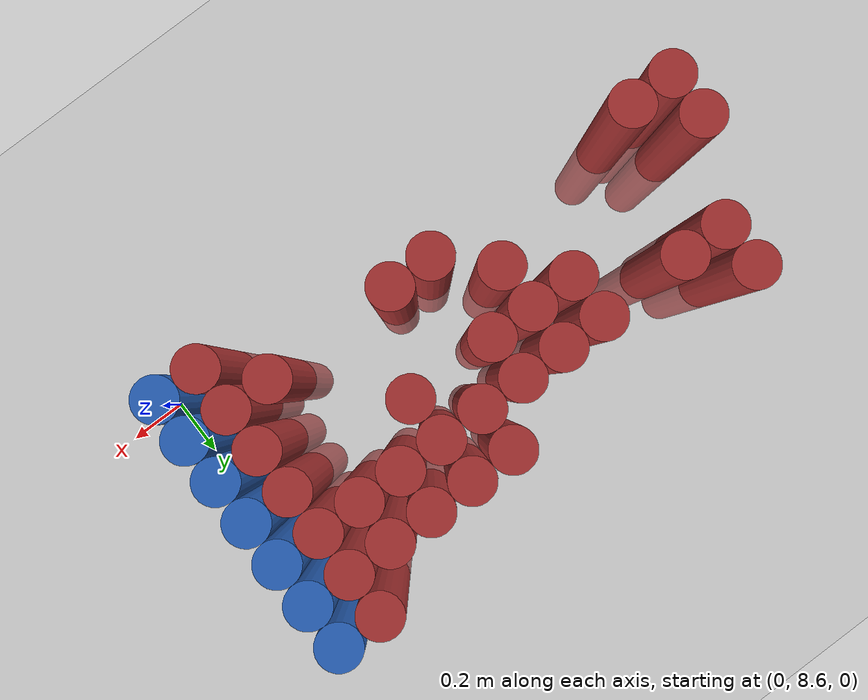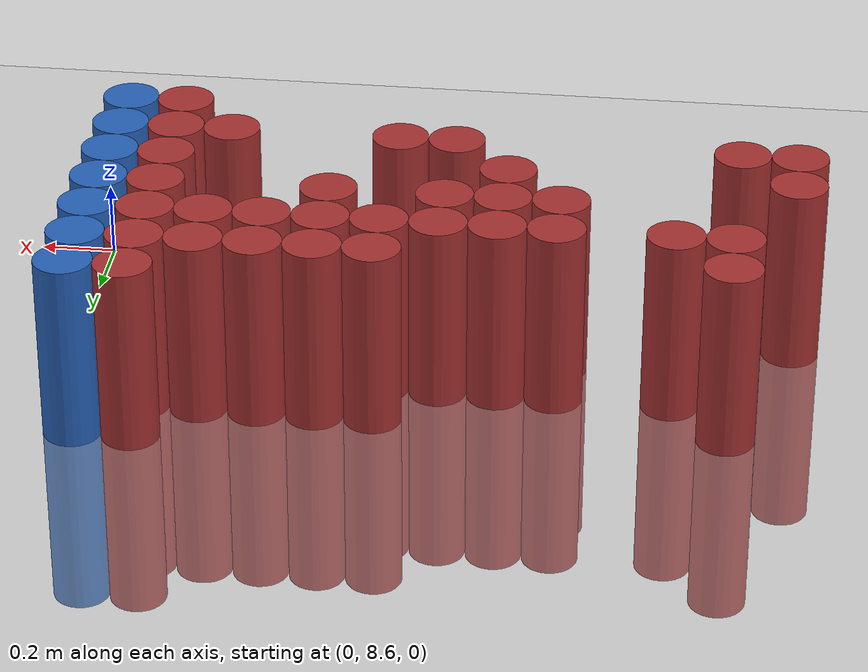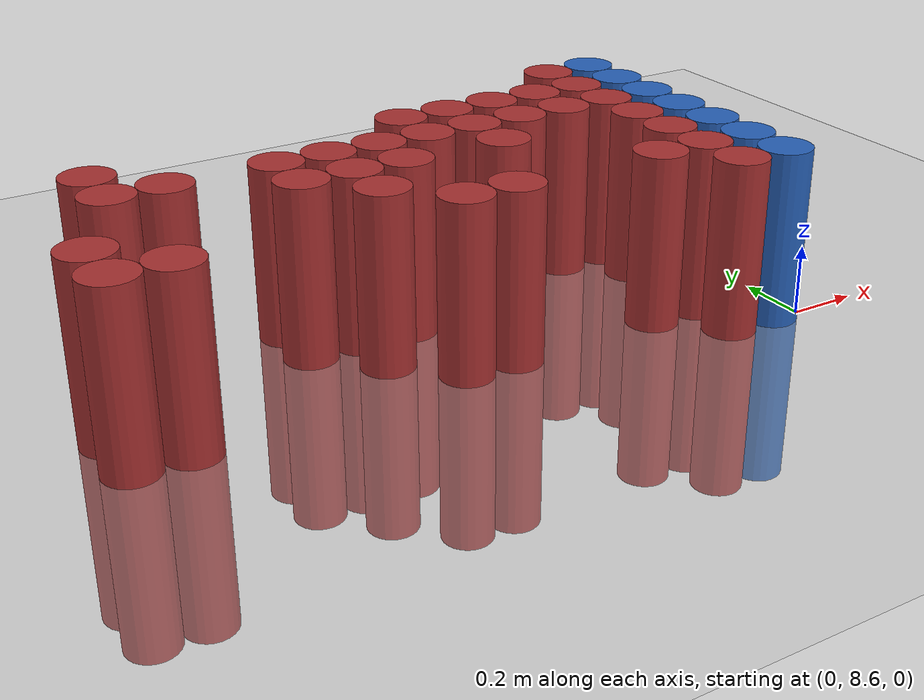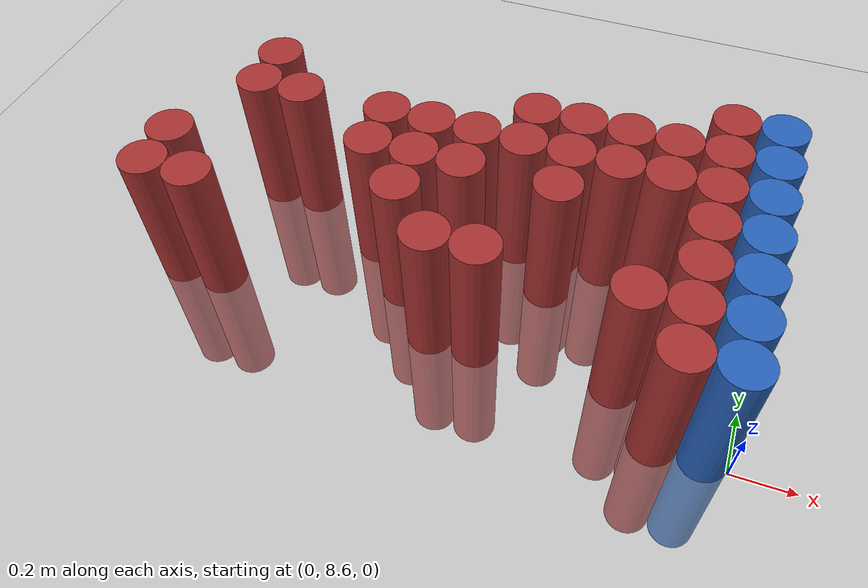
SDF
<sdf version="1.6">
 <world name="default">
  <model name="ground_plane">
   <static>1</static>
   <link name="link">
    <collision name="collision">
     <geometry><plane><normal>0 0 1</normal><size>100 100</size></plane></geometry>
     <surface><friction><ode><mu>100</mu><mu2>50</mu2></ode></friction></surface>
    </collision>
    <visual name="visual">
     <cast_shadows>0</cast_shadows>
     <geometry><plane><normal>0 0 1</normal><size>100 100</size></plane></geometry>
     <material>
      <script><uri>file://media/materials/scripts/gazebo.material</uri><name>Gazebo/Grey</name></script>
     </material>
    </visual>
   </link>
  </model>
  <model name="unit_cylinder_201">
   <static>1</static>
   <pose>-1.875000 8.775000 0.000000 0.000000 0.000000 0.000000</pose>
   <link name="link">
    <inertial>
     <mass>1</mass>
     <inertia><ixx>0.145833</ixx><ixy>0</ixy><ixz>0</ixz><iyy>0.145833</iyy><iyz>0</iyz><izz>0.125</izz></inertia>
    </inertial>
    <collision name="collision">
     <geometry><cylinder><radius>0.075000</radius><length>1</length></cylinder></geometry>
    </collision>
    <visual name="visual">
     <geometry><cylinder><radius>0.075000</radius><length>1</length></cylinder></geometry>
     <material>
      <ambient>0.648000 0.192000 0.192000 1</ambient>
      <diffuse>0.648000 0.192000 0.192000 1</diffuse>
     </material>
     <material>
      <script><name>Gazebo/Grey</name><uri>file://media/materials/scripts/gazebo.material</uri></script>
     </material>
    </visual>
    <sensor name="sensor_contact" type="contact"><contact><collision>collision</collision></contact></sensor>
   </link>
   <plugin filename="gz-sim-touchplugin-system" name="gz::sim::systems::TouchPlugin">
    <target>robot</target>
    <namespace>robot</namespace>
    <time>0.001</time>
    <enabled>true</enabled>
   </plugin>
  </model>
  <model name="unit_cylinder_202">
   <static>1</static>
   <pose>-1.875000 8.925000 0.000000 0.000000 0.000000 0.000000</pose>
   <link name="link">
    <inertial>
     <mass>1</mass>
     <inertia><ixx>0.145833</ixx><ixy>0</ixy><ixz>0</ixz><iyy>0.145833</iyy><iyz>0</iyz><izz>0.125</izz></inertia>
    </inertial>
    <collision name="collision">
     <geometry><cylinder><radius>0.075000</radius><length>1</length></cylinder></geometry>
    </collision>
    <visual name="visual">
     <geometry><cylinder><radius>0.075000</radius><length>1</length></cylinder></geometry>
     <material>
      <ambient>0.648000 0.192000 0.192000 1</ambient>
      <diffuse>0.648000 0.192000 0.192000 1</diffuse>
     </material>
     <material>
      <script><name>Gazebo/Grey</name><uri>file://media/materials/scripts/gazebo.material</uri></script>
     </material>
    </visual>
    <sensor name="sensor_contact" type="contact"><contact><collision>collision</collision></contact></sensor>
   </link>
   <plugin filename="gz-sim-touchplugin-system" name="gz::sim::systems::TouchPlugin">
    <target>robot</target>
    <namespace>robot</namespace>
    <time>0.001</time>
    <enabled>true</enabled>
   </plugin>
  </model>
  <model name="unit_cylinder_206">
   <static>1</static>
   <pose>-1.725000 8.775000 0.000000 0.000000 0.000000 0.000000</pose>
   <link name="link">
    <inertial>
     <mass>1</mass>
     <inertia><ixx>0.145833</ixx><ixy>0</ixy><ixz>0</ixz><iyy>0.145833</iyy><iyz>0</iyz><izz>0.125</izz></inertia>
    </inertial>
    <collision name="collision">
     <geometry><cylinder><radius>0.075000</radius><length>1</length></cylinder></geometry>
    </collision>
    <visual name="visual">
     <geometry><cylinder><radius>0.075000</radius><length>1</length></cylinder></geometry>
     <material>
      <ambient>0.648000 0.192000 0.192000 1</ambient>
      <diffuse>0.648000 0.192000 0.192000 1</diffuse>
     </material>
     <material>
      <script><name>Gazebo/Grey</name><uri>file://media/materials/scripts/gazebo.material</uri></script>
     </material>
    </visual>
    <sensor name="sensor_contact" type="contact"><contact><collision>collision</collision></contact></sensor>
   </link>
   <plugin filename="gz-sim-touchplugin-system" name="gz::sim::systems::TouchPlugin">
    <target>robot</target>
    <namespace>robot</namespace>
    <time>0.001</time>
    <enabled>true</enabled>
   </plugin>
  </model>
  <model name="unit_cylinder_207">
   <static>1</static>
   <pose>-1.725000 9.225000 0.000000 0.000000 0.000000 0.000000</pose>
   <link name="link">
    <inertial>
     <mass>1</mass>
     <inertia><ixx>0.145833</ixx><ixy>0</ixy><ixz>0</ixz><iyy>0.145833</iyy><iyz>0</iyz><izz>0.125</izz></inertia>
    </inertial>
    <collision name="collision">
     <geometry><cylinder><radius>0.075000</radius><length>1</length></cylinder></geometry>
    </collision>
    <visual name="visual">
     <geometry><cylinder><radius>0.075000</radius><length>1</length></cylinder></geometry>
     <material>
      <ambient>0.648000 0.192000 0.192000 1</ambient>
      <diffuse>0.648000 0.192000 0.192000 1</diffuse>
     </material>
     <material>
      <script><name>Gazebo/Grey</name><uri>file://media/materials/scripts/gazebo.material</uri></script>
     </material>
    </visual>
    <sensor name="sensor_contact" type="contact"><contact><collision>collision</collision></contact></sensor>
   </link>
   <plugin filename="gz-sim-touchplugin-system" name="gz::sim::systems::TouchPlugin">
    <target>robot</target>
    <namespace>robot</namespace>
    <time>0.001</time>
    <enabled>true</enabled>
   </plugin>
  </model>
  <model name="unit_cylinder_208">
   <static>1</static>
   <pose>-1.725000 9.375000 0.000000 0.000000 0.000000 0.000000</pose>
   <link name="link">
    <inertial>
     <mass>1</mass>
     <inertia><ixx>0.145833</ixx><ixy>0</ixy><ixz>0</ixz><iyy>0.145833</iyy><iyz>0</iyz><izz>0.125</izz></inertia>
    </inertial>
    <collision name="collision">
     <geometry><cylinder><radius>0.075000</radius><length>1</length></cylinder></geometry>
    </collision>
    <visual name="visual">
     <geometry><cylinder><radius>0.075000</radius><length>1</length></cylinder></geometry>
     <material>
      <ambient>0.648000 0.192000 0.192000 1</ambient>
      <diffuse>0.648000 0.192000 0.192000 1</diffuse>
     </material>
     <material>
      <script><name>Gazebo/Grey</name><uri>file://media/materials/scripts/gazebo.material</uri></script>
     </material>
    </visual>
    <sensor name="sensor_contact" type="contact"><contact><collision>collision</collision></contact></sensor>
   </link>
   <plugin filename="gz-sim-touchplugin-system" name="gz::sim::systems::TouchPlugin">
    <target>robot</target>
    <namespace>robot</namespace>
    <time>0.001</time>
    <enabled>true</enabled>
   </plugin>
  </model>
  <model name="unit_cylinder_214">
   <static>1</static>
   <pose>-1.575000 9.225000 0.000000 0.000000 0.000000 0.000000</pose>
   <link name="link">
    <inertial>
     <mass>1</mass>
     <inertia><ixx>0.145833</ixx><ixy>0</ixy><ixz>0</ixz><iyy>0.145833</iyy><iyz>0</iyz><izz>0.125</izz></inertia>
    </inertial>
    <collision name="collision">
     <geometry><cylinder><radius>0.075000</radius><length>1</length></cylinder></geometry>
    </collision>
    <visual name="visual">
     <geometry><cylinder><radius>0.075000</radius><length>1</length></cylinder></geometry>
     <material>
      <ambient>0.648000 0.192000 0.192000 1</ambient>
      <diffuse>0.648000 0.192000 0.192000 1</diffuse>
     </material>
     <material>
      <script><name>Gazebo/Grey</name><uri>file://media/materials/scripts/gazebo.material</uri></script>
     </material>
    </visual>
    <sensor name="sensor_contact" type="contact"><contact><collision>collision</collision></contact></sensor>
   </link>
   <plugin filename="gz-sim-touchplugin-system" name="gz::sim::systems::TouchPlugin">
    <target>robot</target>
    <namespace>robot</namespace>
    <time>0.001</time>
    <enabled>true</enabled>
   </plugin>
  </model>
  <model name="unit_cylinder_236">
   <static>1</static>
   <pose>-1.275000 9.075000 0.000000 0.000000 0.000000 0.000000</pose>
   <link name="link">
    <inertial>
     <mass>1</mass>
     <inertia><ixx>0.145833</ixx><ixy>0</ixy><ixz>0</ixz><iyy>0.145833</iyy><iyz>0</iyz><izz>0.125</izz></inertia>
    </inertial>
    <collision name="collision">
     <geometry><cylinder><radius>0.075000</radius><length>1</length></cylinder></geometry>
    </collision>
    <visual name="visual">
     <geometry><cylinder><radius>0.075000</radius><length>1</length></cylinder></geometry>
     <material>
      <ambient>0.648000 0.192000 0.192000 1</ambient>
      <diffuse>0.648000 0.192000 0.192000 1</diffuse>
     </material>
     <material>
      <script><name>Gazebo/Grey</name><uri>file://media/materials/scripts/gazebo.material</uri></script>
     </material>
    </visual>
    <sensor name="sensor_contact" type="contact"><contact><collision>collision</collision></contact></sensor>
   </link>
   <plugin filename="gz-sim-touchplugin-system" name="gz::sim::systems::TouchPlugin">
    <target>robot</target>
    <namespace>robot</namespace>
    <time>0.001</time>
    <enabled>true</enabled>
   </plugin>
  </model>
  <model name="unit_cylinder_237">
   <static>1</static>
   <pose>-1.275000 9.225000 0.000000 0.000000 0.000000 0.000000</pose>
   <link name="link">
    <inertial>
     <mass>1</mass>
     <inertia><ixx>0.145833</ixx><ixy>0</ixy><ixz>0</ixz><iyy>0.145833</iyy><iyz>0</iyz><izz>0.125</izz></inertia>
    </inertial>
    <collision name="collision">
     <geometry><cylinder><radius>0.075000</radius><length>1</length></cylinder></geometry>
    </collision>
    <visual name="visual">
     <geometry><cylinder><radius>0.075000</radius><length>1</length></cylinder></geometry>
     <material>
      <ambient>0.648000 0.192000 0.192000 1</ambient>
      <diffuse>0.648000 0.192000 0.192000 1</diffuse>
     </material>
     <material>
      <script><name>Gazebo/Grey</name><uri>file://media/materials/scripts/gazebo.material</uri></script>
     </material>
    </visual>
    <sensor name="sensor_contact" type="contact"><contact><collision>collision</collision></contact></sensor>
   </link>
   <plugin filename="gz-sim-touchplugin-system" name="gz::sim::systems::TouchPlugin">
    <target>robot</target>
    <namespace>robot</namespace>
    <time>0.001</time>
    <enabled>true</enabled>
   </plugin>
  </model>
  <model name="unit_cylinder_245">
   <static>1</static>
   <pose>-1.125000 8.925000 0.000000 0.000000 0.000000 0.000000</pose>
   <link name="link">
    <inertial>
     <mass>1</mass>
     <inertia><ixx>0.145833</ixx><ixy>0</ixy><ixz>0</ixz><iyy>0.145833</iyy><iyz>0</iyz><izz>0.125</izz></inertia>
    </inertial>
    <collision name="collision">
     <geometry><cylinder><radius>0.075000</radius><length>1</length></cylinder></geometry>
    </collision>
    <visual name="visual">
     <geometry><cylinder><radius>0.075000</radius><length>1</length></cylinder></geometry>
     <material>
      <ambient>0.648000 0.192000 0.192000 1</ambient>
      <diffuse>0.648000 0.192000 0.192000 1</diffuse>
     </material>
     <material>
      <script><name>Gazebo/Grey</name><uri>file://media/materials/scripts/gazebo.material</uri></script>
     </material>
    </visual>
    <sensor name="sensor_contact" type="contact"><contact><collision>collision</collision></contact></sensor>
   </link>
   <plugin filename="gz-sim-touchplugin-system" name="gz::sim::systems::TouchPlugin">
    <target>robot</target>
    <namespace>robot</namespace>
    <time>0.001</time>
    <enabled>true</enabled>
   </plugin>
  </model>
  <model name="unit_cylinder_246">
   <static>1</static>
   <pose>-1.125000 9.075000 0.000000 0.000000 0.000000 0.000000</pose>
   <link name="link">
    <inertial>
     <mass>1</mass>
     <inertia><ixx>0.145833</ixx><ixy>0</ixy><ixz>0</ixz><iyy>0.145833</iyy><iyz>0</iyz><izz>0.125</izz></inertia>
    </inertial>
    <collision name="collision">
     <geometry><cylinder><radius>0.075000</radius><length>1</length></cylinder></geometry>
    </collision>
    <visual name="visual">
     <geometry><cylinder><radius>0.075000</radius><length>1</length></cylinder></geometry>
     <material>
      <ambient>0.648000 0.192000 0.192000 1</ambient>
      <diffuse>0.648000 0.192000 0.192000 1</diffuse>
     </material>
     <material>
      <script><name>Gazebo/Grey</name><uri>file://media/materials/scripts/gazebo.material</uri></script>
     </material>
    </visual>
    <sensor name="sensor_contact" type="contact"><contact><collision>collision</collision></contact></sensor>
   </link>
   <plugin filename="gz-sim-touchplugin-system" name="gz::sim::systems::TouchPlugin">
    <target>robot</target>
    <namespace>robot</namespace>
    <time>0.001</time>
    <enabled>true</enabled>
   </plugin>
  </model>
  <model name="unit_cylinder_247">
   <static>1</static>
   <pose>-1.125000 9.225000 0.000000 0.000000 0.000000 0.000000</pose>
   <link name="link">
    <inertial>
     <mass>1</mass>
     <inertia><ixx>0.145833</ixx><ixy>0</ixy><ixz>0</ixz><iyy>0.145833</iyy><iyz>0</iyz><izz>0.125</izz></inertia>
    </inertial>
    <collision name="collision">
     <geometry><cylinder><radius>0.075000</radius><length>1</length></cylinder></geometry>
    </collision>
    <visual name="visual">
     <geometry><cylinder><radius>0.075000</radius><length>1</length></cylinder></geometry>
     <material>
      <ambient>0.648000 0.192000 0.192000 1</ambient>
      <diffuse>0.648000 0.192000 0.192000 1</diffuse>
     </material>
     <material>
      <script><name>Gazebo/Grey</name><uri>file://media/materials/scripts/gazebo.material</uri></script>
     </material>
    </visual>
    <sensor name="sensor_contact" type="contact"><contact><collision>collision</collision></contact></sensor>
   </link>
   <plugin filename="gz-sim-touchplugin-system" name="gz::sim::systems::TouchPlugin">
    <target>robot</target>
    <namespace>robot</namespace>
    <time>0.001</time>
    <enabled>true</enabled>
   </plugin>
  </model>
  <model name="unit_cylinder_254">
   <static>1</static>
   <pose>-0.975000 8.775000 0.000000 0.000000 0.000000 0.000000</pose>
   <link name="link">
    <inertial>
     <mass>1</mass>
     <inertia><ixx>0.145833</ixx><ixy>0</ixy><ixz>0</ixz><iyy>0.145833</iyy><iyz>0</iyz><izz>0.125</izz></inertia>
    </inertial>
    <collision name="collision">
     <geometry><cylinder><radius>0.075000</radius><length>1</length></cylinder></geometry>
    </collision>
    <visual name="visual">
     <geometry><cylinder><radius>0.075000</radius><length>1</length></cylinder></geometry>
     <material>
      <ambient>0.648000 0.192000 0.192000 1</ambient>
      <diffuse>0.648000 0.192000 0.192000 1</diffuse>
     </material>
     <material>
      <script><name>Gazebo/Grey</name><uri>file://media/materials/scripts/gazebo.material</uri></script>
     </material>
    </visual>
    <sensor name="sensor_contact" type="contact"><contact><collision>collision</collision></contact></sensor>
   </link>
   <plugin filename="gz-sim-touchplugin-system" name="gz::sim::systems::TouchPlugin">
    <target>robot</target>
    <namespace>robot</namespace>
    <time>0.001</time>
    <enabled>true</enabled>
   </plugin>
  </model>
  <model name="unit_cylinder_255">
   <static>1</static>
   <pose>-0.975000 9.075000 0.000000 0.000000 0.000000 0.000000</pose>
   <link name="link">
    <inertial>
     <mass>1</mass>
     <inertia><ixx>0.145833</ixx><ixy>0</ixy><ixz>0</ixz><iyy>0.145833</iyy><iyz>0</iyz><izz>0.125</izz></inertia>
    </inertial>
    <collision name="collision">
     <geometry><cylinder><radius>0.075000</radius><length>1</length></cylinder></geometry>
    </collision>
    <visual name="visual">
     <geometry><cylinder><radius>0.075000</radius><length>1</length></cylinder></geometry>
     <material>
      <ambient>0.648000 0.192000 0.192000 1</ambient>
      <diffuse>0.648000 0.192000 0.192000 1</diffuse>
     </material>
     <material>
      <script><name>Gazebo/Grey</name><uri>file://media/materials/scripts/gazebo.material</uri></script>
     </material>
    </visual>
    <sensor name="sensor_contact" type="contact"><contact><collision>collision</collision></contact></sensor>
   </link>
   <plugin filename="gz-sim-touchplugin-system" name="gz::sim::systems::TouchPlugin">
    <target>robot</target>
    <namespace>robot</namespace>
    <time>0.001</time>
    <enabled>true</enabled>
   </plugin>
  </model>
  <model name="unit_cylinder_256">
   <static>1</static>
   <pose>-0.975000 9.225000 0.000000 0.000000 0.000000 0.000000</pose>
   <link name="link">
    <inertial>
     <mass>1</mass>
     <inertia><ixx>0.145833</ixx><ixy>0</ixy><ixz>0</ixz><iyy>0.145833</iyy><iyz>0</iyz><izz>0.125</izz></inertia>
    </inertial>
    <collision name="collision">
     <geometry><cylinder><radius>0.075000</radius><length>1</length></cylinder></geometry>
    </collision>
    <visual name="visual">
     <geometry><cylinder><radius>0.075000</radius><length>1</length></cylinder></geometry>
     <material>
      <ambient>0.648000 0.192000 0.192000 1</ambient>
      <diffuse>0.648000 0.192000 0.192000 1</diffuse>
     </material>
     <material>
      <script><name>Gazebo/Grey</name><uri>file://media/materials/scripts/gazebo.material</uri></script>
     </material>
    </visual>
    <sensor name="sensor_contact" type="contact"><contact><collision>collision</collision></contact></sensor>
   </link>
   <plugin filename="gz-sim-touchplugin-system" name="gz::sim::systems::TouchPlugin">
    <target>robot</target>
    <namespace>robot</namespace>
    <time>0.001</time>
    <enabled>true</enabled>
   </plugin>
  </model>
  <model name="unit_cylinder_261">
   <static>1</static>
   <pose>-0.825000 8.775000 0.000000 0.000000 0.000000 0.000000</pose>
   <link name="link">
    <inertial>
     <mass>1</mass>
     <inertia><ixx>0.145833</ixx><ixy>0</ixy><ixz>0</ixz><iyy>0.145833</iyy><iyz>0</iyz><izz>0.125</izz></inertia>
    </inertial>
    <collision name="collision">
     <geometry><cylinder><radius>0.075000</radius><length>1</length></cylinder></geometry>
    </collision>
    <visual name="visual">
     <geometry><cylinder><radius>0.075000</radius><length>1</length></cylinder></geometry>
     <material>
      <ambient>0.648000 0.192000 0.192000 1</ambient>
      <diffuse>0.648000 0.192000 0.192000 1</diffuse>
     </material>
     <material>
      <script><name>Gazebo/Grey</name><uri>file://media/materials/scripts/gazebo.material</uri></script>
     </material>
    </visual>
    <sensor name="sensor_contact" type="contact"><contact><collision>collision</collision></contact></sensor>
   </link>
   <plugin filename="gz-sim-touchplugin-system" name="gz::sim::systems::TouchPlugin">
    <target>robot</target>
    <namespace>robot</namespace>
    <time>0.001</time>
    <enabled>true</enabled>
   </plugin>
  </model>
  <model name="unit_cylinder_262">
   <static>1</static>
   <pose>-0.825000 9.225000 0.000000 0.000000 0.000000 0.000000</pose>
   <link name="link">
    <inertial>
     <mass>1</mass>
     <inertia><ixx>0.145833</ixx><ixy>0</ixy><ixz>0</ixz><iyy>0.145833</iyy><iyz>0</iyz><izz>0.125</izz></inertia>
    </inertial>
    <collision name="collision">
     <geometry><cylinder><radius>0.075000</radius><length>1</length></cylinder></geometry>
    </collision>
    <visual name="visual">
     <geometry><cylinder><radius>0.075000</radius><length>1</length></cylinder></geometry>
     <material>
      <ambient>0.648000 0.192000 0.192000 1</ambient>
      <diffuse>0.648000 0.192000 0.192000 1</diffuse>
     </material>
     <material>
      <script><name>Gazebo/Grey</name><uri>file://media/materials/scripts/gazebo.material</uri></script>
     </material>
    </visual>
    <sensor name="sensor_contact" type="contact"><contact><collision>collision</collision></contact></sensor>
   </link>
   <plugin filename="gz-sim-touchplugin-system" name="gz::sim::systems::TouchPlugin">
    <target>robot</target>
    <namespace>robot</namespace>
    <time>0.001</time>
    <enabled>true</enabled>
   </plugin>
  </model>
  <model name="unit_cylinder_263">
   <static>1</static>
   <pose>-0.825000 9.375000 0.000000 0.000000 0.000000 0.000000</pose>
   <link name="link">
    <inertial>
     <mass>1</mass>
     <inertia><ixx>0.145833</ixx><ixy>0</ixy><ixz>0</ixz><iyy>0.145833</iyy><iyz>0</iyz><izz>0.125</izz></inertia>
    </inertial>
    <collision name="collision">
     <geometry><cylinder><radius>0.075000</radius><length>1</length></cylinder></geometry>
    </collision>
    <visual name="visual">
     <geometry><cylinder><radius>0.075000</radius><length>1</length></cylinder></geometry>
     <material>
      <ambient>0.648000 0.192000 0.192000 1</ambient>
      <diffuse>0.648000 0.192000 0.192000 1</diffuse>
     </material>
     <material>
      <script><name>Gazebo/Grey</name><uri>file://media/materials/scripts/gazebo.material</uri></script>
     </material>
    </visual>
    <sensor name="sensor_contact" type="contact"><contact><collision>collision</collision></contact></sensor>
   </link>
   <plugin filename="gz-sim-touchplugin-system" name="gz::sim::systems::TouchPlugin">
    <target>robot</target>
    <namespace>robot</namespace>
    <time>0.001</time>
    <enabled>true</enabled>
   </plugin>
  </model>
  <model name="unit_cylinder_267">
   <static>1</static>
   <pose>-0.675000 9.075000 0.000000 0.000000 0.000000 0.000000</pose>
   <link name="link">
    <inertial>
     <mass>1</mass>
     <inertia><ixx>0.145833</ixx><ixy>0</ixy><ixz>0</ixz><iyy>0.145833</iyy><iyz>0</iyz><izz>0.125</izz></inertia>
    </inertial>
    <collision name="collision">
     <geometry><cylinder><radius>0.075000</radius><length>1</length></cylinder></geometry>
    </collision>
    <visual name="visual">
     <geometry><cylinder><radius>0.075000</radius><length>1</length></cylinder></geometry>
     <material>
      <ambient>0.648000 0.192000 0.192000 1</ambient>
      <diffuse>0.648000 0.192000 0.192000 1</diffuse>
     </material>
     <material>
      <script><name>Gazebo/Grey</name><uri>file://media/materials/scripts/gazebo.material</uri></script>
     </material>
    </visual>
    <sensor name="sensor_contact" type="contact"><contact><collision>collision</collision></contact></sensor>
   </link>
   <plugin filename="gz-sim-touchplugin-system" name="gz::sim::systems::TouchPlugin">
    <target>robot</target>
    <namespace>robot</namespace>
    <time>0.001</time>
    <enabled>true</enabled>
   </plugin>
  </model>
  <model name="unit_cylinder_268">
   <static>1</static>
   <pose>-0.675000 9.225000 0.000000 0.000000 0.000000 0.000000</pose>
   <link name="link">
    <inertial>
     <mass>1</mass>
     <inertia><ixx>0.145833</ixx><ixy>0</ixy><ixz>0</ixz><iyy>0.145833</iyy><iyz>0</iyz><izz>0.125</izz></inertia>
    </inertial>
    <collision name="collision">
     <geometry><cylinder><radius>0.075000</radius><length>1</length></cylinder></geometry>
    </collision>
    <visual name="visual">
     <geometry><cylinder><radius>0.075000</radius><length>1</length></cylinder></geometry>
     <material>
      <ambient>0.648000 0.192000 0.192000 1</ambient>
      <diffuse>0.648000 0.192000 0.192000 1</diffuse>
     </material>
     <material>
      <script><name>Gazebo/Grey</name><uri>file://media/materials/scripts/gazebo.material</uri></script>
     </material>
    </visual>
    <sensor name="sensor_contact" type="contact"><contact><collision>collision</collision></contact></sensor>
   </link>
   <plugin filename="gz-sim-touchplugin-system" name="gz::sim::systems::TouchPlugin">
    <target>robot</target>
    <namespace>robot</namespace>
    <time>0.001</time>
    <enabled>true</enabled>
   </plugin>
  </model>
  <model name="unit_cylinder_269">
   <static>1</static>
   <pose>-0.675000 9.375000 0.000000 0.000000 0.000000 0.000000</pose>
   <link name="link">
    <inertial>
     <mass>1</mass>
     <inertia><ixx>0.145833</ixx><ixy>0</ixy><ixz>0</ixz><iyy>0.145833</iyy><iyz>0</iyz><izz>0.125</izz></inertia>
    </inertial>
    <collision name="collision">
     <geometry><cylinder><radius>0.075000</radius><length>1</length></cylinder></geometry>
    </collision>
    <visual name="visual">
     <geometry><cylinder><radius>0.075000</radius><length>1</length></cylinder></geometry>
     <material>
      <ambient>0.648000 0.192000 0.192000 1</ambient>
      <diffuse>0.648000 0.192000 0.192000 1</diffuse>
     </material>
     <material>
      <script><name>Gazebo/Grey</name><uri>file://media/materials/scripts/gazebo.material</uri></script>
     </material>
    </visual>
    <sensor name="sensor_contact" type="contact"><contact><collision>collision</collision></contact></sensor>
   </link>
   <plugin filename="gz-sim-touchplugin-system" name="gz::sim::systems::TouchPlugin">
    <target>robot</target>
    <namespace>robot</namespace>
    <time>0.001</time>
    <enabled>true</enabled>
   </plugin>
  </model>
  <model name="unit_cylinder_274">
   <static>1</static>
   <pose>-0.525000 9.225000 0.000000 0.000000 0.000000 0.000000</pose>
   <link name="link">
    <inertial>
     <mass>1</mass>
     <inertia><ixx>0.145833</ixx><ixy>0</ixy><ixz>0</ixz><iyy>0.145833</iyy><iyz>0</iyz><izz>0.125</izz></inertia>
    </inertial>
    <collision name="collision">
     <geometry><cylinder><radius>0.075000</radius><length>1</length></cylinder></geometry>
    </collision>
    <visual name="visual">
     <geometry><cylinder><radius>0.075000</radius><length>1</length></cylinder></geometry>
     <material>
      <ambient>0.648000 0.192000 0.192000 1</ambient>
      <diffuse>0.648000 0.192000 0.192000 1</diffuse>
     </material>
     <material>
      <script><name>Gazebo/Grey</name><uri>file://media/materials/scripts/gazebo.material</uri></script>
     </material>
    </visual>
    <sensor name="sensor_contact" type="contact"><contact><collision>collision</collision></contact></sensor>
   </link>
   <plugin filename="gz-sim-touchplugin-system" name="gz::sim::systems::TouchPlugin">
    <target>robot</target>
    <namespace>robot</namespace>
    <time>0.001</time>
    <enabled>true</enabled>
   </plugin>
  </model>
  <model name="unit_cylinder_275">
   <static>1</static>
   <pose>-0.525000 9.375000 0.000000 0.000000 0.000000 0.000000</pose>
   <link name="link">
    <inertial>
     <mass>1</mass>
     <inertia><ixx>0.145833</ixx><ixy>0</ixy><ixz>0</ixz><iyy>0.145833</iyy><iyz>0</iyz><izz>0.125</izz></inertia>
    </inertial>
    <collision name="collision">
     <geometry><cylinder><radius>0.075000</radius><length>1</length></cylinder></geometry>
    </collision>
    <visual name="visual">
     <geometry><cylinder><radius>0.075000</radius><length>1</length></cylinder></geometry>
     <material>
      <ambient>0.648000 0.192000 0.192000 1</ambient>
      <diffuse>0.648000 0.192000 0.192000 1</diffuse>
     </material>
     <material>
      <script><name>Gazebo/Grey</name><uri>file://media/materials/scripts/gazebo.material</uri></script>
     </material>
    </visual>
    <sensor name="sensor_contact" type="contact"><contact><collision>collision</collision></contact></sensor>
   </link>
   <plugin filename="gz-sim-touchplugin-system" name="gz::sim::systems::TouchPlugin">
    <target>robot</target>
    <namespace>robot</namespace>
    <time>0.001</time>
    <enabled>true</enabled>
   </plugin>
  </model>
  <model name="unit_cylinder_286">
   <static>1</static>
   <pose>-0.375000 8.775000 0.000000 0.000000 0.000000 0.000000</pose>
   <link name="link">
    <inertial>
     <mass>1</mass>
     <inertia><ixx>0.145833</ixx><ixy>0</ixy><ixz>0</ixz><iyy>0.145833</iyy><iyz>0</iyz><izz>0.125</izz></inertia>
    </inertial>
    <collision name="collision">
     <geometry><cylinder><radius>0.075000</radius><length>1</length></cylinder></geometry>
    </collision>
    <visual name="visual">
     <geometry><cylinder><radius>0.075000</radius><length>1</length></cylinder></geometry>
     <material>
      <ambient>0.648000 0.192000 0.192000 1</ambient>
      <diffuse>0.648000 0.192000 0.192000 1</diffuse>
     </material>
     <material>
      <script><name>Gazebo/Grey</name><uri>file://media/materials/scripts/gazebo.material</uri></script>
     </material>
    </visual>
    <sensor name="sensor_contact" type="contact"><contact><collision>collision</collision></contact></sensor>
   </link>
   <plugin filename="gz-sim-touchplugin-system" name="gz::sim::systems::TouchPlugin">
    <target>robot</target>
    <namespace>robot</namespace>
    <time>0.001</time>
    <enabled>true</enabled>
   </plugin>
  </model>
  <model name="unit_cylinder_287">
   <static>1</static>
   <pose>-0.375000 9.225000 0.000000 0.000000 0.000000 0.000000</pose>
   <link name="link">
    <inertial>
     <mass>1</mass>
     <inertia><ixx>0.145833</ixx><ixy>0</ixy><ixz>0</ixz><iyy>0.145833</iyy><iyz>0</iyz><izz>0.125</izz></inertia>
    </inertial>
    <collision name="collision">
     <geometry><cylinder><radius>0.075000</radius><length>1</length></cylinder></geometry>
    </collision>
    <visual name="visual">
     <geometry><cylinder><radius>0.075000</radius><length>1</length></cylinder></geometry>
     <material>
      <ambient>0.648000 0.192000 0.192000 1</ambient>
      <diffuse>0.648000 0.192000 0.192000 1</diffuse>
     </material>
     <material>
      <script><name>Gazebo/Grey</name><uri>file://media/materials/scripts/gazebo.material</uri></script>
     </material>
    </visual>
    <sensor name="sensor_contact" type="contact"><contact><collision>collision</collision></contact></sensor>
   </link>
   <plugin filename="gz-sim-touchplugin-system" name="gz::sim::systems::TouchPlugin">
    <target>robot</target>
    <namespace>robot</namespace>
    <time>0.001</time>
    <enabled>true</enabled>
   </plugin>
  </model>
  <model name="unit_cylinder_288">
   <static>1</static>
   <pose>-0.375000 9.375000 0.000000 0.000000 0.000000 0.000000</pose>
   <link name="link">
    <inertial>
     <mass>1</mass>
     <inertia><ixx>0.145833</ixx><ixy>0</ixy><ixz>0</ixz><iyy>0.145833</iyy><iyz>0</iyz><izz>0.125</izz></inertia>
    </inertial>
    <collision name="collision">
     <geometry><cylinder><radius>0.075000</radius><length>1</length></cylinder></geometry>
    </collision>
    <visual name="visual">
     <geometry><cylinder><radius>0.075000</radius><length>1</length></cylinder></geometry>
     <material>
      <ambient>0.648000 0.192000 0.192000 1</ambient>
      <diffuse>0.648000 0.192000 0.192000 1</diffuse>
     </material>
     <material>
      <script><name>Gazebo/Grey</name><uri>file://media/materials/scripts/gazebo.material</uri></script>
     </material>
    </visual>
    <sensor name="sensor_contact" type="contact"><contact><collision>collision</collision></contact></sensor>
   </link>
   <plugin filename="gz-sim-touchplugin-system" name="gz::sim::systems::TouchPlugin">
    <target>robot</target>
    <namespace>robot</namespace>
    <time>0.001</time>
    <enabled>true</enabled>
   </plugin>
  </model>
  <model name="unit_cylinder_310">
   <static>1</static>
   <pose>-0.225000 8.625000 0.000000 0.000000 0.000000 0.000000</pose>
   <link name="link">
    <inertial>
     <mass>1</mass>
     <inertia><ixx>0.145833</ixx><ixy>0</ixy><ixz>0</ixz><iyy>0.145833</iyy><iyz>0</iyz><izz>0.125</izz></inertia>
    </inertial>
    <collision name="collision">
     <geometry><cylinder><radius>0.075000</radius><length>1</length></cylinder></geometry>
    </collision>
    <visual name="visual">
     <geometry><cylinder><radius>0.075000</radius><length>1</length></cylinder></geometry>
     <material>
      <ambient>0.648000 0.192000 0.192000 1</ambient>
      <diffuse>0.648000 0.192000 0.192000 1</diffuse>
     </material>
     <material>
      <script><name>Gazebo/Grey</name><uri>file://media/materials/scripts/gazebo.material</uri></script>
     </material>
    </visual>
    <sensor name="sensor_contact" type="contact"><contact><collision>collision</collision></contact></sensor>
   </link>
   <plugin filename="gz-sim-touchplugin-system" name="gz::sim::systems::TouchPlugin">
    <target>robot</target>
    <namespace>robot</namespace>
    <time>0.001</time>
    <enabled>true</enabled>
   </plugin>
  </model>
  <model name="unit_cylinder_311">
   <static>1</static>
   <pose>-0.225000 8.775000 0.000000 0.000000 0.000000 0.000000</pose>
   <link name="link">
    <inertial>
     <mass>1</mass>
     <inertia><ixx>0.145833</ixx><ixy>0</ixy><ixz>0</ixz><iyy>0.145833</iyy><iyz>0</iyz><izz>0.125</izz></inertia>
    </inertial>
    <collision name="collision">
     <geometry><cylinder><radius>0.075000</radius><length>1</length></cylinder></geometry>
    </collision>
    <visual name="visual">
     <geometry><cylinder><radius>0.075000</radius><length>1</length></cylinder></geometry>
     <material>
      <ambient>0.648000 0.192000 0.192000 1</ambient>
      <diffuse>0.648000 0.192000 0.192000 1</diffuse>
     </material>
     <material>
      <script><name>Gazebo/Grey</name><uri>file://media/materials/scripts/gazebo.material</uri></script>
     </material>
    </visual>
    <sensor name="sensor_contact" type="contact"><contact><collision>collision</collision></contact></sensor>
   </link>
   <plugin filename="gz-sim-touchplugin-system" name="gz::sim::systems::TouchPlugin">
    <target>robot</target>
    <namespace>robot</namespace>
    <time>0.001</time>
    <enabled>true</enabled>
   </plugin>
  </model>
  <model name="unit_cylinder_312">
   <static>1</static>
   <pose>-0.225000 8.925000 0.000000 0.000000 0.000000 0.000000</pose>
   <link name="link">
    <inertial>
     <mass>1</mass>
     <inertia><ixx>0.145833</ixx><ixy>0</ixy><ixz>0</ixz><iyy>0.145833</iyy><iyz>0</iyz><izz>0.125</izz></inertia>
    </inertial>
    <collision name="collision">
     <geometry><cylinder><radius>0.075000</radius><length>1</length></cylinder></geometry>
    </collision>
    <visual name="visual">
     <geometry><cylinder><radius>0.075000</radius><length>1</length></cylinder></geometry>
     <material>
      <ambient>0.648000 0.192000 0.192000 1</ambient>
      <diffuse>0.648000 0.192000 0.192000 1</diffuse>
     </material>
     <material>
      <script><name>Gazebo/Grey</name><uri>file://media/materials/scripts/gazebo.material</uri></script>
     </material>
    </visual>
    <sensor name="sensor_contact" type="contact"><contact><collision>collision</collision></contact></sensor>
   </link>
   <plugin filename="gz-sim-touchplugin-system" name="gz::sim::systems::TouchPlugin">
    <target>robot</target>
    <namespace>robot</namespace>
    <time>0.001</time>
    <enabled>true</enabled>
   </plugin>
  </model>
  <model name="unit_cylinder_313">
   <static>1</static>
   <pose>-0.225000 9.075000 0.000000 0.000000 0.000000 0.000000</pose>
   <link name="link">
    <inertial>
     <mass>1</mass>
     <inertia><ixx>0.145833</ixx><ixy>0</ixy><ixz>0</ixz><iyy>0.145833</iyy><iyz>0</iyz><izz>0.125</izz></inertia>
    </inertial>
    <collision name="collision">
     <geometry><cylinder><radius>0.075000</radius><length>1</length></cylinder></geometry>
    </collision>
    <visual name="visual">
     <geometry><cylinder><radius>0.075000</radius><length>1</length></cylinder></geometry>
     <material>
      <ambient>0.648000 0.192000 0.192000 1</ambient>
      <diffuse>0.648000 0.192000 0.192000 1</diffuse>
     </material>
     <material>
      <script><name>Gazebo/Grey</name><uri>file://media/materials/scripts/gazebo.material</uri></script>
     </material>
    </visual>
    <sensor name="sensor_contact" type="contact"><contact><collision>collision</collision></contact></sensor>
   </link>
   <plugin filename="gz-sim-touchplugin-system" name="gz::sim::systems::TouchPlugin">
    <target>robot</target>
    <namespace>robot</namespace>
    <time>0.001</time>
    <enabled>true</enabled>
   </plugin>
  </model>
  <model name="unit_cylinder_314">
   <static>1</static>
   <pose>-0.225000 9.225000 0.000000 0.000000 0.000000 0.000000</pose>
   <link name="link">
    <inertial>
     <mass>1</mass>
     <inertia><ixx>0.145833</ixx><ixy>0</ixy><ixz>0</ixz><iyy>0.145833</iyy><iyz>0</iyz><izz>0.125</izz></inertia>
    </inertial>
    <collision name="collision">
     <geometry><cylinder><radius>0.075000</radius><length>1</length></cylinder></geometry>
    </collision>
    <visual name="visual">
     <geometry><cylinder><radius>0.075000</radius><length>1</length></cylinder></geometry>
     <material>
      <ambient>0.648000 0.192000 0.192000 1</ambient>
      <diffuse>0.648000 0.192000 0.192000 1</diffuse>
     </material>
     <material>
      <script><name>Gazebo/Grey</name><uri>file://media/materials/scripts/gazebo.material</uri></script>
     </material>
    </visual>
    <sensor name="sensor_contact" type="contact"><contact><collision>collision</collision></contact></sensor>
   </link>
   <plugin filename="gz-sim-touchplugin-system" name="gz::sim::systems::TouchPlugin">
    <target>robot</target>
    <namespace>robot</namespace>
    <time>0.001</time>
    <enabled>true</enabled>
   </plugin>
  </model>
  <model name="unit_cylinder_315">
   <static>1</static>
   <pose>-0.225000 9.375000 0.000000 0.000000 0.000000 0.000000</pose>
   <link name="link">
    <inertial>
     <mass>1</mass>
     <inertia><ixx>0.145833</ixx><ixy>0</ixy><ixz>0</ixz><iyy>0.145833</iyy><iyz>0</iyz><izz>0.125</izz></inertia>
    </inertial>
    <collision name="collision">
     <geometry><cylinder><radius>0.075000</radius><length>1</length></cylinder></geometry>
    </collision>
    <visual name="visual">
     <geometry><cylinder><radius>0.075000</radius><length>1</length></cylinder></geometry>
     <material>
      <ambient>0.648000 0.192000 0.192000 1</ambient>
      <diffuse>0.648000 0.192000 0.192000 1</diffuse>
     </material>
     <material>
      <script><name>Gazebo/Grey</name><uri>file://media/materials/scripts/gazebo.material</uri></script>
     </material>
    </visual>
    <sensor name="sensor_contact" type="contact"><contact><collision>collision</collision></contact></sensor>
   </link>
   <plugin filename="gz-sim-touchplugin-system" name="gz::sim::systems::TouchPlugin">
    <target>robot</target>
    <namespace>robot</namespace>
    <time>0.001</time>
    <enabled>true</enabled>
   </plugin>
  </model>
  <model name="unit_cylinder_316">
   <static>1</static>
   <pose>-0.225000 9.525000 0.000000 0.000000 0.000000 0.000000</pose>
   <link name="link">
    <inertial>
     <mass>1</mass>
     <inertia><ixx>0.145833</ixx><ixy>0</ixy><ixz>0</ixz><iyy>0.145833</iyy><iyz>0</iyz><izz>0.125</izz></inertia>
    </inertial>
    <collision name="collision">
     <geometry><cylinder><radius>0.075000</radius><length>1</length></cylinder></geometry>
    </collision>
    <visual name="visual">
     <geometry><cylinder><radius>0.075000</radius><length>1</length></cylinder></geometry>
     <material>
      <ambient>0.648000 0.192000 0.192000 1</ambient>
      <diffuse>0.648000 0.192000 0.192000 1</diffuse>
     </material>
     <material>
      <script><name>Gazebo/Grey</name><uri>file://media/materials/scripts/gazebo.material</uri></script>
     </material>
    </visual>
    <sensor name="sensor_contact" type="contact"><contact><collision>collision</collision></contact></sensor>
   </link>
   <plugin filename="gz-sim-touchplugin-system" name="gz::sim::systems::TouchPlugin">
    <target>robot</target>
    <namespace>robot</namespace>
    <time>0.001</time>
    <enabled>true</enabled>
   </plugin>
  </model>
  <model name="unit_cylinder_340">
   <static>1</static>
   <pose>-0.075000 8.625000 0.000000 0.000000 0.000000 0.000000</pose>
   <link name="link">
    <inertial>
     <mass>1</mass>
     <inertia><ixx>0.145833</ixx><ixy>0</ixy><ixz>0</ixz><iyy>0.145833</iyy><iyz>0</iyz><izz>0.125</izz></inertia>
    </inertial>
    <collision name="collision">
     <geometry><cylinder><radius>0.075000</radius><length>1</length></cylinder></geometry>
    </collision>
    <visual name="visual">
     <geometry><cylinder><radius>0.075000</radius><length>1</length></cylinder></geometry>
     <material>
      <ambient>0.152000 0.379000 0.720000 1</ambient>
      <diffuse>0.152000 0.379000 0.720000 1</diffuse>
     </material>
     <material>
      <script><name>Gazebo/Grey</name><uri>file://media/materials/scripts/gazebo.material</uri></script>
     </material>
    </visual>
    <sensor name="sensor_contact" type="contact"><contact><collision>collision</collision></contact></sensor>
   </link>
   <plugin filename="gz-sim-touchplugin-system" name="gz::sim::systems::TouchPlugin">
    <target>robot</target>
    <namespace>robot</namespace>
    <time>0.001</time>
    <enabled>true</enabled>
   </plugin>
  </model>
  <model name="unit_cylinder_341">
   <static>1</static>
   <pose>-0.075000 8.775000 0.000000 0.000000 0.000000 0.000000</pose>
   <link name="link">
    <inertial>
     <mass>1</mass>
     <inertia><ixx>0.145833</ixx><ixy>0</ixy><ixz>0</ixz><iyy>0.145833</iyy><iyz>0</iyz><izz>0.125</izz></inertia>
    </inertial>
    <collision name="collision">
     <geometry><cylinder><radius>0.075000</radius><length>1</length></cylinder></geometry>
    </collision>
    <visual name="visual">
     <geometry><cylinder><radius>0.075000</radius><length>1</length></cylinder></geometry>
     <material>
      <ambient>0.152000 0.379000 0.720000 1</ambient>
      <diffuse>0.152000 0.379000 0.720000 1</diffuse>
     </material>
     <material>
      <script><name>Gazebo/Grey</name><uri>file://media/materials/scripts/gazebo.material</uri></script>
     </material>
    </visual>
    <sensor name="sensor_contact" type="contact"><contact><collision>collision</collision></contact></sensor>
   </link>
   <plugin filename="gz-sim-touchplugin-system" name="gz::sim::systems::TouchPlugin">
    <target>robot</target>
    <namespace>robot</namespace>
    <time>0.001</time>
    <enabled>true</enabled>
   </plugin>
  </model>
  <model name="unit_cylinder_342">
   <static>1</static>
   <pose>-0.075000 8.925000 0.000000 0.000000 0.000000 0.000000</pose>
   <link name="link">
    <inertial>
     <mass>1</mass>
     <inertia><ixx>0.145833</ixx><ixy>0</ixy><ixz>0</ixz><iyy>0.145833</iyy><iyz>0</iyz><izz>0.125</izz></inertia>
    </inertial>
    <collision name="collision">
     <geometry><cylinder><radius>0.075000</radius><length>1</length></cylinder></geometry>
    </collision>
    <visual name="visual">
     <geometry><cylinder><radius>0.075000</radius><length>1</length></cylinder></geometry>
     <material>
      <ambient>0.152000 0.379000 0.720000 1</ambient>
      <diffuse>0.152000 0.379000 0.720000 1</diffuse>
     </material>
     <material>
      <script><name>Gazebo/Grey</name><uri>file://media/materials/scripts/gazebo.material</uri></script>
     </material>
    </visual>
    <sensor name="sensor_contact" type="contact"><contact><collision>collision</collision></contact></sensor>
   </link>
   <plugin filename="gz-sim-touchplugin-system" name="gz::sim::systems::TouchPlugin">
    <target>robot</target>
    <namespace>robot</namespace>
    <time>0.001</time>
    <enabled>true</enabled>
   </plugin>
  </model>
  <model name="unit_cylinder_343">
   <static>1</static>
   <pose>-0.075000 9.075000 0.000000 0.000000 0.000000 0.000000</pose>
   <link name="link">
    <inertial>
     <mass>1</mass>
     <inertia><ixx>0.145833</ixx><ixy>0</ixy><ixz>0</ixz><iyy>0.145833</iyy><iyz>0</iyz><izz>0.125</izz></inertia>
    </inertial>
    <collision name="collision">
     <geometry><cylinder><radius>0.075000</radius><length>1</length></cylinder></geometry>
    </collision>
    <visual name="visual">
     <geometry><cylinder><radius>0.075000</radius><length>1</length></cylinder></geometry>
     <material>
      <ambient>0.152000 0.379000 0.720000 1</ambient>
      <diffuse>0.152000 0.379000 0.720000 1</diffuse>
     </material>
     <material>
      <script><name>Gazebo/Grey</name><uri>file://media/materials/scripts/gazebo.material</uri></script>
     </material>
    </visual>
    <sensor name="sensor_contact" type="contact"><contact><collision>collision</collision></contact></sensor>
   </link>
   <plugin filename="gz-sim-touchplugin-system" name="gz::sim::systems::TouchPlugin">
    <target>robot</target>
    <namespace>robot</namespace>
    <time>0.001</time>
    <enabled>true</enabled>
   </plugin>
  </model>
  <model name="unit_cylinder_344">
   <static>1</static>
   <pose>-0.075000 9.225000 0.000000 0.000000 0.000000 0.000000</pose>
   <link name="link">
    <inertial>
     <mass>1</mass>
     <inertia><ixx>0.145833</ixx><ixy>0</ixy><ixz>0</ixz><iyy>0.145833</iyy><iyz>0</iyz><izz>0.125</izz></inertia>
    </inertial>
    <collision name="collision">
     <geometry><cylinder><radius>0.075000</radius><length>1</length></cylinder></geometry>
    </collision>
    <visual name="visual">
     <geometry><cylinder><radius>0.075000</radius><length>1</length></cylinder></geometry>
     <material>
      <ambient>0.152000 0.379000 0.720000 1</ambient>
      <diffuse>0.152000 0.379000 0.720000 1</diffuse>
     </material>
     <material>
      <script><name>Gazebo/Grey</name><uri>file://media/materials/scripts/gazebo.material</uri></script>
     </material>
    </visual>
    <sensor name="sensor_contact" type="contact"><contact><collision>collision</collision></contact></sensor>
   </link>
   <plugin filename="gz-sim-touchplugin-system" name="gz::sim::systems::TouchPlugin">
    <target>robot</target>
    <namespace>robot</namespace>
    <time>0.001</time>
    <enabled>true</enabled>
   </plugin>
  </model>
  <model name="unit_cylinder_345">
   <static>1</static>
   <pose>-0.075000 9.375000 0.000000 0.000000 0.000000 0.000000</pose>
   <link name="link">
    <inertial>
     <mass>1</mass>
     <inertia><ixx>0.145833</ixx><ixy>0</ixy><ixz>0</ixz><iyy>0.145833</iyy><iyz>0</iyz><izz>0.125</izz></inertia>
    </inertial>
    <collision name="collision">
     <geometry><cylinder><radius>0.075000</radius><length>1</length></cylinder></geometry>
    </collision>
    <visual name="visual">
     <geometry><cylinder><radius>0.075000</radius><length>1</length></cylinder></geometry>
     <material>
      <ambient>0.152000 0.379000 0.720000 1</ambient>
      <diffuse>0.152000 0.379000 0.720000 1</diffuse>
     </material>
     <material>
      <script><name>Gazebo/Grey</name><uri>file://media/materials/scripts/gazebo.material</uri></script>
     </material>
    </visual>
    <sensor name="sensor_contact" type="contact"><contact><collision>collision</collision></contact></sensor>
   </link>
   <plugin filename="gz-sim-touchplugin-system" name="gz::sim::systems::TouchPlugin">
    <target>robot</target>
    <namespace>robot</namespace>
    <time>0.001</time>
    <enabled>true</enabled>
   </plugin>
  </model>
  <model name="unit_cylinder_346">
   <static>1</static>
   <pose>-0.075000 9.525000 0.000000 0.000000 0.000000 0.000000</pose>
   <link name="link">
    <inertial>
     <mass>1</mass>
     <inertia><ixx>0.145833</ixx><ixy>0</ixy><ixz>0</ixz><iyy>0.145833</iyy><iyz>0</iyz><izz>0.125</izz></inertia>
    </inertial>
    <collision name="collision">
     <geometry><cylinder><radius>0.075000</radius><length>1</length></cylinder></geometry>
    </collision>
    <visual name="visual">
     <geometry><cylinder><radius>0.075000</radius><length>1</length></cylinder></geometry>
     <material>
      <ambient>0.152000 0.379000 0.720000 1</ambient>
      <diffuse>0.152000 0.379000 0.720000 1</diffuse>
     </material>
     <material>
      <script><name>Gazebo/Grey</name><uri>file://media/materials/scripts/gazebo.material</uri></script>
     </material>
    </visual>
    <sensor name="sensor_contact" type="contact"><contact><collision>collision</collision></contact></sensor>
   </link>
   <plugin filename="gz-sim-touchplugin-system" name="gz::sim::systems::TouchPlugin">
    <target>robot</target>
    <namespace>robot</namespace>
    <time>0.001</time>
    <enabled>true</enabled>
   </plugin>
  </model>
 </world>
</sdf>
